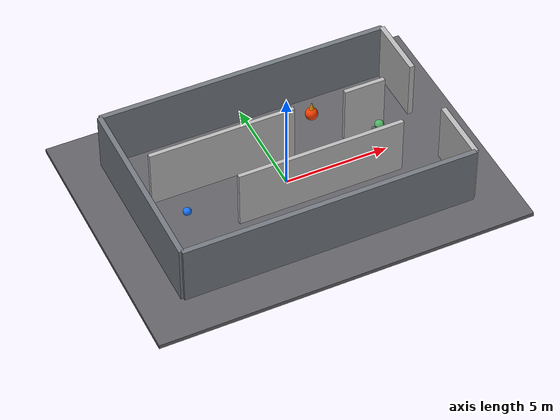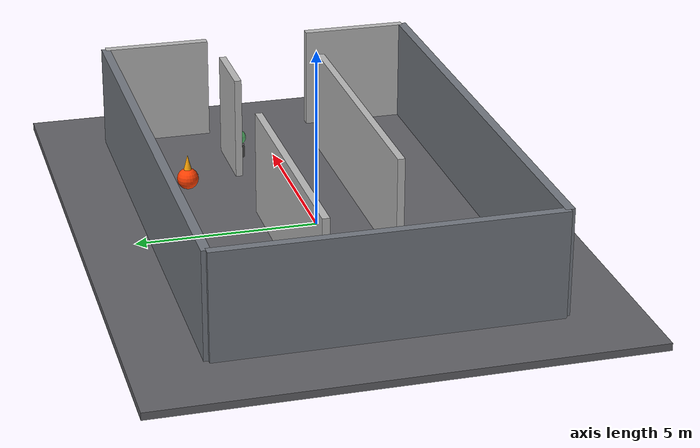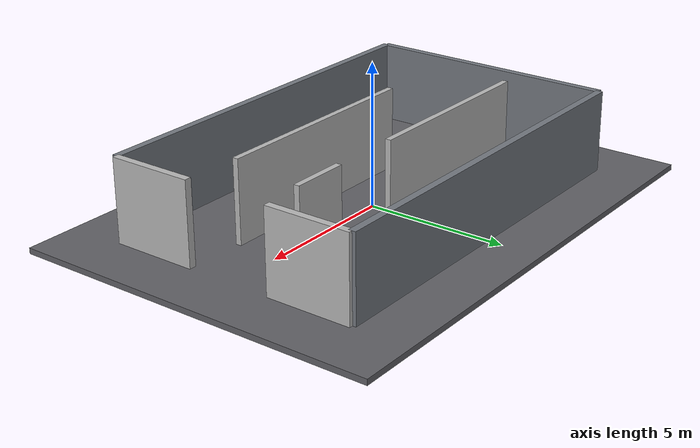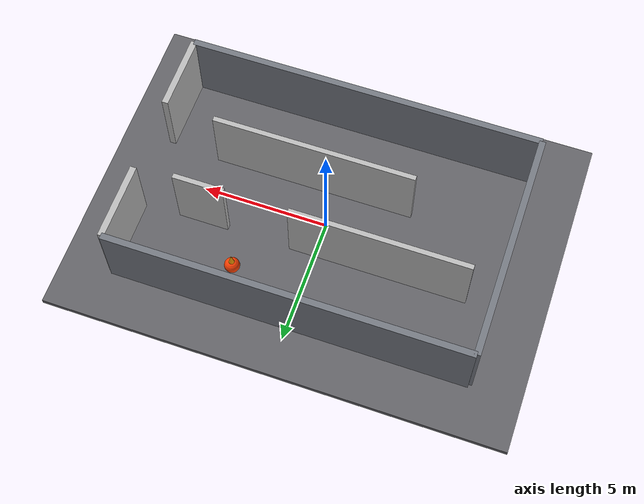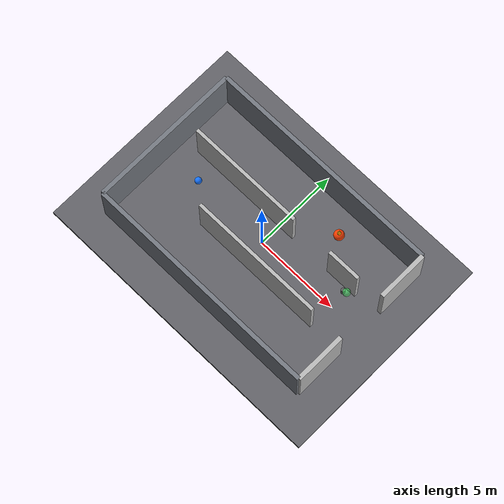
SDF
<?xml version="1.0" ?>
<sdf version="1.9">
  <world name="rescue_building">
    <gravity>0 0 -9.81</gravity>
    <physics name="default_physics" type="ode">
      <max_step_size>0.004</max_step_size>
      <real_time_factor>1.0</real_time_factor>
      <real_time_update_rate>250</real_time_update_rate>
    </physics>
    <scene>
      <ambient>0.55 0.55 0.55 1</ambient>
      <background>0.12 0.14 0.18 1</background>
      <shadows>true</shadows>
    </scene>
    <light name="sun" type="directional">
      <pose>0 -2 12 0.45 -0.35 0.4</pose>
      <direction>-0.25 0.15 -1</direction>
      <diffuse>1 1 0.95 1</diffuse>
      <specular>0.2 0.2 0.2 1</specular>
      <attenuation><range>40</range><constant>0.8</constant><linear>0.01</linear><quadratic>0.001</quadratic></attenuation>
    </light>
    <gui fullscreen="0">
      <camera name="main_camera"><pose>0 -11 16 0.9 0 0</pose></camera>
    </gui>
    <plugin filename="gz-sim-physics-system" name="gz::sim::systems::Physics"/>
    <plugin filename="gz-sim-user-commands-system" name="gz::sim::systems::UserCommands"/>
    <plugin filename="gz-sim-scene-broadcaster-system" name="gz::sim::systems::SceneBroadcaster"/>
    <plugin filename="gz-sim-sensors-system" name="gz::sim::systems::Sensors"><render_engine>ogre2</render_engine></plugin>

    <model name="floor"><static>true</static><link name="link">
      <collision name="c"><geometry><box><size>18 13 0.2</size></box></geometry></collision>
      <visual name="v"><geometry><box><size>18 13 0.2</size></box></geometry>
        <material><ambient>0.30 0.30 0.32 1</ambient><diffuse>0.38 0.38 0.40 1</diffuse></material>
      </visual>
    </link></model>

    <!-- Compact 14 m x 9 m building: large enough for two Waffles, not oversized. -->
    <model name="wall_north"><static>true</static><pose>0 4.5 1.5 0 0 0</pose><link name="l"><collision name="c"><geometry><box><size>14 0.25 3</size></box></geometry></collision><visual name="v"><geometry><box><size>14 0.25 3</size></box></geometry><material><ambient>0.30 0.32 0.35 1</ambient><diffuse>0.45 0.47 0.50 1</diffuse></material></visual></link></model>
    <model name="wall_south"><static>true</static><pose>0 -4.5 1.5 0 0 0</pose><link name="l"><collision name="c"><geometry><box><size>14 0.25 3</size></box></geometry></collision><visual name="v"><geometry><box><size>14 0.25 3</size></box></geometry><material><ambient>0.30 0.32 0.35 1</ambient><diffuse>0.45 0.47 0.50 1</diffuse></material></visual></link></model>
    <model name="wall_west"><static>true</static><pose>-7 0 1.5 0 0 0</pose><link name="l"><collision name="c"><geometry><box><size>0.25 9 3</size></box></geometry></collision><visual name="v"><geometry><box><size>0.25 9 3</size></box></geometry><material><ambient>0.30 0.32 0.35 1</ambient><diffuse>0.45 0.47 0.50 1</diffuse></material></visual></link></model>
    <model name="wall_east_top"><static>true</static><pose>7 3.0 1.5 0 0 0</pose><link name="l"><collision name="c"><geometry><box><size>0.25 3 3</size></box></geometry></collision><visual name="v"><geometry><box><size>0.25 3 3</size></box></geometry></visual></link></model>
    <model name="wall_east_bottom"><static>true</static><pose>7 -3.0 1.5 0 0 0</pose><link name="l"><collision name="c"><geometry><box><size>0.25 3 3</size></box></geometry></collision><visual name="v"><geometry><box><size>0.25 3 3</size></box></geometry></visual></link></model>

    <!-- Partitions leave generous 1.2 m openings for a 0.4 m Waffle. -->
    <model name="partition_upper_left"><static>true</static><pose>-2.5 1.35 1.5 0 0 0</pose><link name="l"><collision name="c"><geometry><box><size>7 0.2 3</size></box></geometry></collision><visual name="v"><geometry><box><size>7 0.2 3</size></box></geometry></visual></link></model>
    <model name="partition_upper_right"><static>true</static><pose>4.5 1.35 1.5 0 0 0</pose><link name="l"><collision name="c"><geometry><box><size>2 0.2 3</size></box></geometry></collision><visual name="v"><geometry><box><size>2 0.2 3</size></box></geometry></visual></link></model>
    <model name="partition_lower"><static>true</static><pose>1.0 -1.45 1.5 0 0 0</pose><link name="l"><collision name="c"><geometry><box><size>8 0.2 3</size></box></geometry></collision><visual name="v"><geometry><box><size>8 0.2 3</size></box></geometry></visual></link></model>

    <model name="fire_hazard"><static>true</static><pose>2.7 3.0 0.2 0 0 0</pose><link name="l">
      <visual name="core"><pose>0 0 0.35 0 0 0</pose><geometry><sphere><radius>0.30</radius></sphere></geometry><material><ambient>1 0.15 0.01 1</ambient><diffuse>1 0.25 0.01 1</diffuse><emissive>1 0.08 0.005 1</emissive></material></visual>
      <visual name="flame"><pose>0 0 0.7 0 0 0</pose><geometry><cone><radius>0.18</radius><length>0.7</length></cone></geometry><material><ambient>1 0.65 0.02 1</ambient><diffuse>1 0.65 0.02 1</diffuse><emissive>1 0.25 0.01 1</emissive></material></visual>
      <light name="fire_light" type="point"><pose>0 0 0.9 0 0 0</pose><diffuse>1 0.2 0.02 1</diffuse><attenuation><range>4</range><constant>0.4</constant><linear>0.2</linear><quadratic>0.08</quadratic></attenuation></light>
    </link></model>
    <model name="gas_leak"><static>true</static><pose>4.9 1.0 0.15 0 0 0</pose><link name="l">
      <visual name="pipe"><geometry><cylinder><radius>0.12</radius><length>0.65</length></cylinder></geometry><material><ambient>0.25 0.25 0.25 1</ambient><diffuse>0.35 0.35 0.35 1</diffuse></material></visual>
      <visual name="gas"><pose>0.25 0 0.45 0 0 0</pose><geometry><sphere><radius>0.22</radius></sphere></geometry><material><ambient>0.2 0.9 0.35 0.55</ambient><diffuse>0.25 1 0.4 0.55</diffuse><transparency>0.45</transparency></material></visual>
    </link></model>
    <model name="victim_marker"><static>true</static><pose>-4.8 0.1 0.14 0 0 0</pose><link name="l">
      <visual name="body"><geometry><sphere><radius>0.20</radius></sphere></geometry><material><ambient>0.05 0.35 0.9 1</ambient><diffuse>0.08 0.45 1 1</diffuse><emissive>0.02 0.08 0.25 1</emissive></material></visual>
    </link></model>
  </world>
</sdf>
